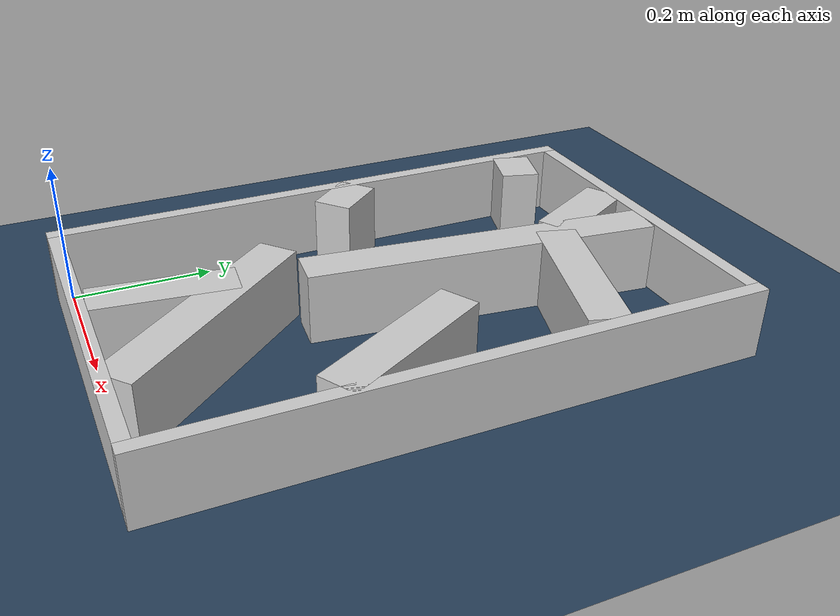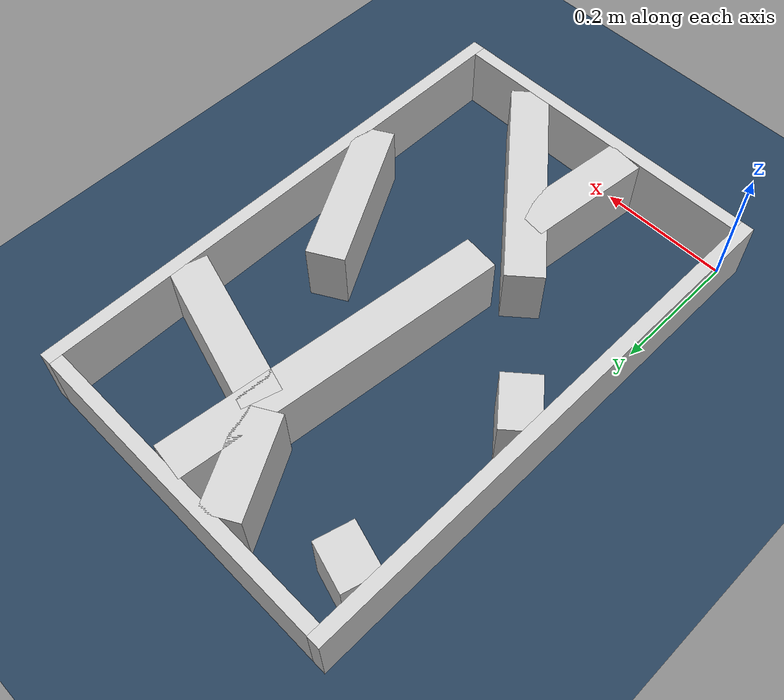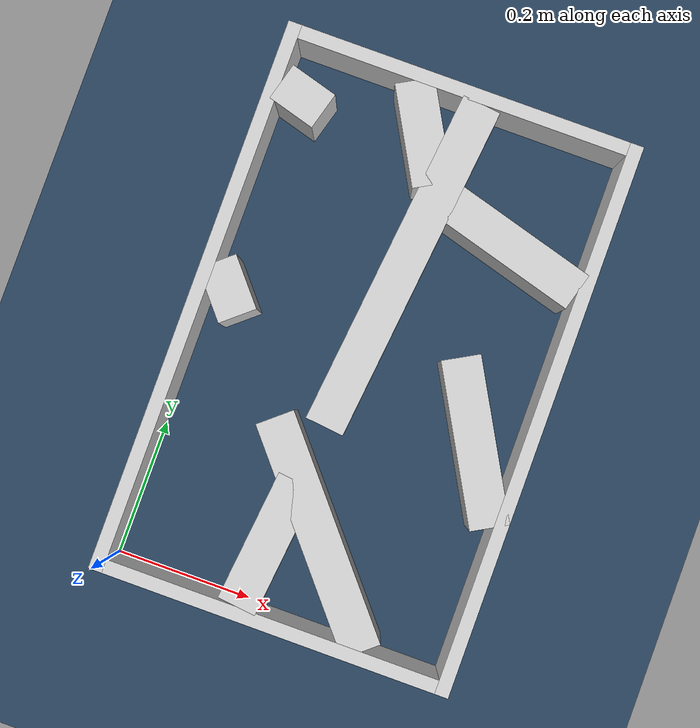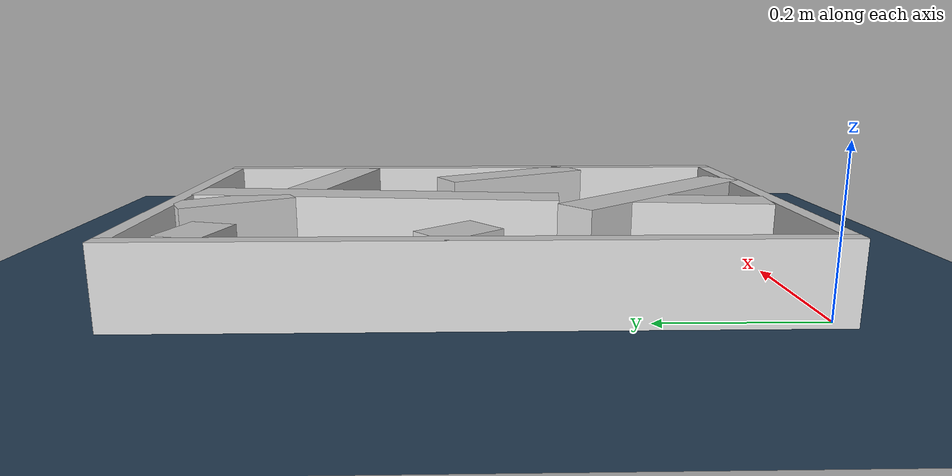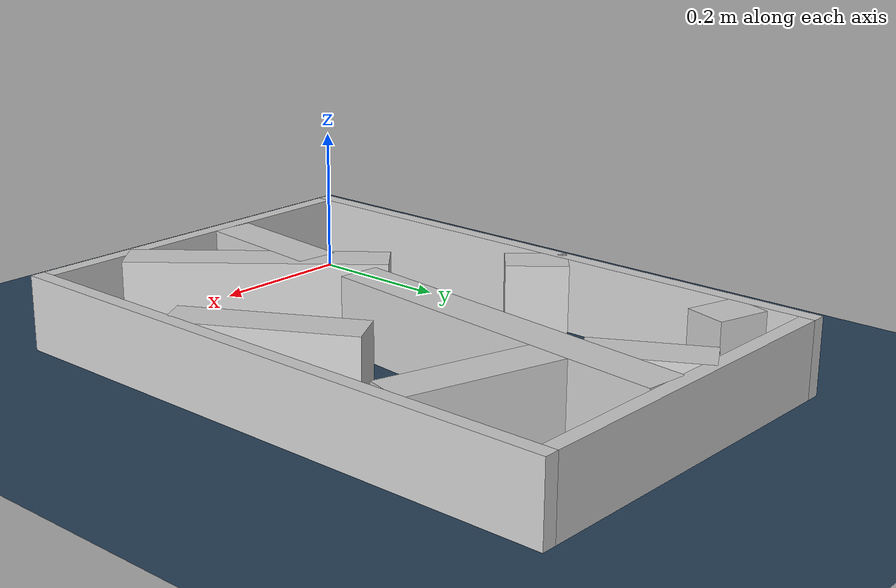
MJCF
<?xml version="1.0" ?>
<mujoco model="generated_real_template">
  <compiler angle="degree"/>
  <option timestep="0.002" integrator="implicitfast" iterations="100" cone="elliptic"/>
  <default>
    <geom density="1"/>
  </default>
  <asset>
    <texture builtin="gradient" height="3072" rgb1="0.3 0.5 0.7" rgb2="0 0 0" type="skybox" width="512"/>
    <texture builtin="checker" height="300" mark="edge" markrgb="0.8 0.8 0.8" name="groundplane" rgb1="0.2 0.3 0.4" rgb2="0.1 0.2 0.3" type="2d" width="300"/>
    <material name="groundplane" reflectance="0.2" texrepeat="5 5" texture="groundplane" texuniform="true"/>
  </asset>
  <worldbody>
    <light dir="0 0 -1" directional="true" pos="0 0 1.5"/>
    <geom name="floor" type="plane" condim="4" friction="0.5 0.005 0.001" material="groundplane" size="0 0 0.05"/>
    <body name="walls">
      <geom name="wall_boundary_left" type="box" condim="4" friction="1.0 0.005 0.0001" rgba="0.8 0.8 0.8 1" pos="-0.010000 0.387500 0.050000" euler="0 0 0.000000" size="0.010000 0.407500 0.050000"/>
      <geom name="wall_boundary_right" type="box" condim="4" friction="1.0 0.005 0.0001" rgba="0.8 0.8 0.8 1" pos="0.500000 0.387500 0.050000" euler="0 0 0.000000" size="0.010000 0.407500 0.050000"/>
      <geom name="wall_boundary_bottom" type="box" condim="4" friction="1.0 0.005 0.0001" rgba="0.8 0.8 0.8 1" pos="0.245000 -0.010000 0.050000" euler="0 0 0.000000" size="0.245000 0.010000 0.050000"/>
      <geom name="wall_boundary_top" type="box" condim="4" friction="1.0 0.005 0.0001" rgba="0.8 0.8 0.8 1" pos="0.245000 0.785000 0.050000" euler="0 0 0.000000" size="0.245000 0.010000 0.050000"/>
      <geom name="wall_inner_1_1" type="box" condim="4" friction="1.0 0.005 0.0001" rgba="0.8 0.8 0.8 1" pos="0.374548 0.604016 0.050000" euler="0 0 164.169527" size="0.120003 0.028500 0.050000"/>
      <geom name="wall_inner_1_2" type="box" condim="4" friction="1.0 0.005 0.0001" rgba="0.8 0.8 0.8 1" pos="0.034928 0.700314 0.050000" euler="0 0 164.169527" size="0.036305 0.028500 0.050000"/>
      <geom name="wall_inner_2_1" type="box" condim="4" friction="1.0 0.005 0.0001" rgba="0.8 0.8 0.8 1" pos="0.211940 0.709660 0.050000" euler="0 0 -60.804016" size="0.074849 0.028500 0.050000"/>
      <geom name="wall_inner_2_2" type="box" condim="4" friction="1.0 0.005 0.0001" rgba="0.8 0.8 0.8 1" pos="0.426474 0.325733 0.050000" euler="0 0 -60.804016" size="0.120225 0.028500 0.050000"/>
      <geom name="wall_inner_3_1" type="box" condim="4" friction="1.0 0.005 0.0001" rgba="0.8 0.8 0.8 1" pos="0.028298 0.410278 0.050000" euler="0 0 -49.760918" size="0.041087 0.028500 0.050000"/>
      <geom name="wall_inner_3_2" type="box" condim="4" friction="1.0 0.005 0.0001" rgba="0.8 0.8 0.8 1" pos="0.263682 0.132125 0.050000" euler="0 0 -49.760918" size="0.173084 0.028500 0.050000"/>
      <geom name="wall_inner_4_1" type="box" condim="4" friction="1.0 0.005 0.0001" rgba="0.8 0.8 0.8 1" pos="0.248461 0.525033 0.050000" euler="0 0 -96.213986" size="0.251444 0.028500 0.050000"/>
      <geom name="wall_inner_4_2" type="box" condim="4" friction="1.0 0.005 0.0001" rgba="0.8 0.8 0.8 1" pos="0.201699 0.095558 0.050000" euler="0 0 -96.213986" size="0.096122 0.028500 0.050000"/>
    </body>
  </worldbody>
</mujoco>
